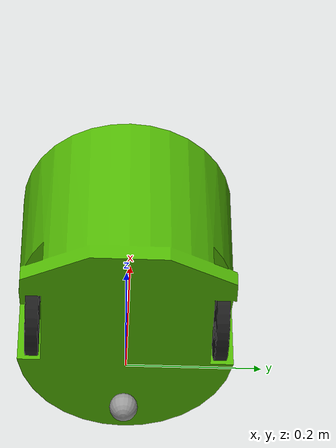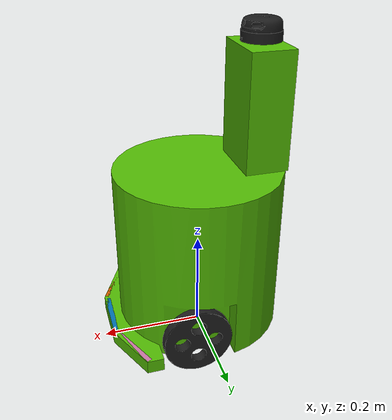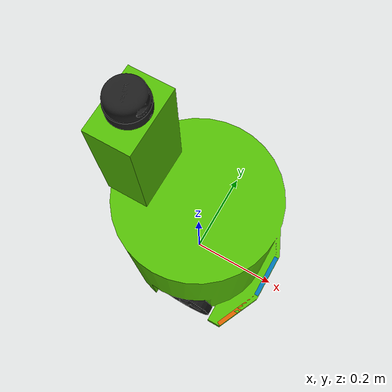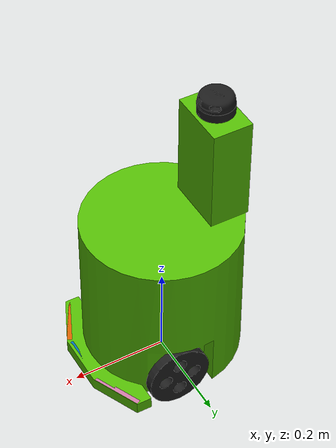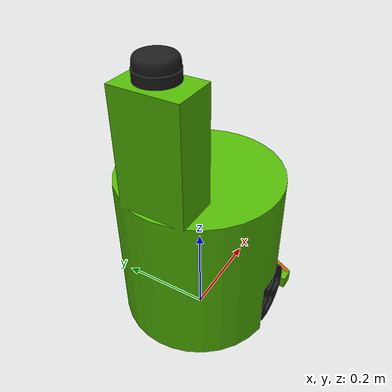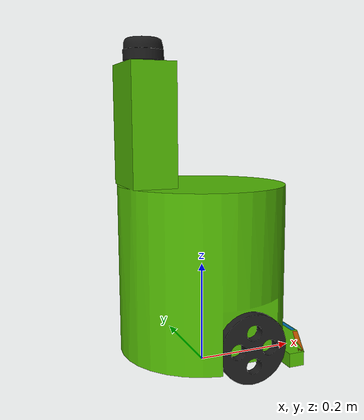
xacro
<?xml version="1.0"?>
<robot name="tango" xmlns:xacro="http://ros.org/wiki/xacro">

  <xacro:arg name="arc" default="true"/>

  <xacro:include filename="$(find tango_description)/urdf/common_properties.urdf.xacro"/>
  <xacro:include filename="$(find tango_description)/urdf/chassis_with_lidar.urdf.xacro"/>
  <xacro:include filename="$(find tango_description)/urdf/chassis_with_kinect.urdf.xacro"/>
  <xacro:include filename="$(find tango_description)/urdf/rplidar_a2.urdf.xacro"/>
  <xacro:include filename="$(find tango_description)/urdf/kinect.urdf.xacro"/>
  <xacro:include filename="$(find tango_description)/urdf/wheel.urdf.xacro"/>
  <xacro:include filename="$(find tango_description)/urdf/caster.urdf.xacro"/>
  <xacro:include filename="$(find tango_description)/urdf/bumper.urdf.xacro"/>
  <xacro:include filename="$(find tango_description)/urdf/imu.urdf.xacro"/>
  <xacro:include filename="$(find tango_description)/urdf/sonar_sensor.urdf.xacro"/>
  <xacro:include filename="$(find tango_description)/urdf/infrared_sensor.urdf.xacro"/>
  <xacro:include filename="$(find tango_description)/urdf/fall_sensor.urdf.xacro"/>

  <xacro:property name="left" value="1"/>
  <xacro:property name="right" value="-1"/>

  <xacro:macro name="create_fixed_link_joint" params="prefix parent joint_xyz joint_rpy">
    <link name="${prefix}_link"/>
    <joint name="${prefix}_joint" type="fixed">
      <parent link="${parent}"/>
      <child link="${prefix}_link"/>
      <origin xyz="${joint_xyz}" rpy="${joint_rpy}"/>
    </joint>
  </xacro:macro>

  <link name="base_footprint"/>

  <xacro:create_fixed_link_joint prefix="bottom_tier" parent="base_footprint" joint_xyz="0 0 ${base_footprint_to_bottom_tier}" joint_rpy="0 0 0"/>
  <xacro:create_fixed_link_joint prefix="first_tier" parent="bottom_tier_link" joint_xyz="0 0 ${bottom_tier_to_first_tier}" joint_rpy="0 0 0"/>
  <xacro:create_fixed_link_joint prefix="second_tier" parent="first_tier_link" joint_xyz="0 0 ${first_tier_to_second_tier}" joint_rpy="0 0 0"/>
  <xacro:create_fixed_link_joint prefix="third_tier" parent="second_tier_link" joint_xyz="0 0 ${second_tier_to_third_tier}" joint_rpy="0 0 0"/>
  <xacro:create_fixed_link_joint prefix="slam_tier" parent="third_tier_link" joint_xyz="-0.115 0 ${third_tier_to_slam_tier}" joint_rpy="0 0 0"/>

  <xacro:if value="$(arg arc)">
    <xacro:chassis_with_lidar prefix="chassis_with_lidar" parent="base_footprint" mass="10.0" link_xyz="0 0 0" link_rpy="0 0 0" joint_xyz="0 0 0" joint_rpy="0 0 0"/>
    <xacro:lidar prefix="lidar" parent="slam_tier_link" link_xyz="0 0 0" link_rpy="0 0 0" joint_xyz="0 0 0.04" joint_rpy="0 0 0"/>
  </xacro:if>
  <xacro:unless value="$(arg arc)">
    <xacro:chassis_with_kinect prefix="chassis_with_kinect" parent="base_footprint" mass="10.0" link_xyz="0 0 0" link_rpy="0 0 0" joint_xyz="0 0 0" joint_rpy="0 0 0"/>
    <xacro:kinect prefix="kinect" parent="slam_tier_link" link_xyz="0 0 0" link_rpy="0 0 0" joint_xyz="0 0 0.04" joint_rpy="0 0 ${pi/2}"/>
    <xacro:create_fixed_link_joint prefix="camera" parent="slam_tier_link" joint_xyz="0 0 0.04" joint_rpy="0 0 0"/>
  </xacro:unless>

  <xacro:wheel prefix="left" parent="base_footprint" link_xyz="0 0 0" link_rpy="${pi/2} 0  0" joint_xyz="${wheel_center_height} ${(wheel_seperation*left)/2} ${wheel_diameter/2}"  joint_rpy="0 0 0" radius="${wheel_diameter/2}" height="${wheel_thickness}" mass="1.5"/>
  <xacro:wheel prefix="right" parent="base_footprint" link_xyz="0 0 0" link_rpy="${pi/2} 0  0"  joint_xyz="${wheel_center_height} ${(wheel_seperation*right)/2} ${wheel_diameter/2}"  joint_rpy="0 0 0" radius="${wheel_diameter/2}" height="${wheel_thickness}" mass="1.5"/>
  <xacro:caster prefix="caster" parent="base_footprint" link_xyz="0 0 0" link_rpy="0 0 0" joint_xyz="-0.111 0 ${caster_diameter/2}" joint_rpy="0 0 0" mass="0.8" radius="${caster_diameter/2}"/>

  <xacro:imu_sensor  prefix="imu" parent="first_tier_link" joint_xyz="0 0 0.015" joint_rpy="0 0 0"/>

  <xacro:bumper prefix="center_bumper" parent="bottom_tier_link" link_xyz="0 0 0" link_rpy="0 0 0" joint_xyz="0.185 0 0"  joint_rpy="0 0 0" mass="0.2" height="0.025" width="0.01" depth="0.105"/>
  <xacro:bumper prefix="right_bumper" parent="bottom_tier_link" link_xyz="0 0 0" link_rpy="0 0 0" joint_xyz="0.162 ${0.107*right} 0"  joint_rpy="0 0 ${((25*pi)/180)*right}" mass="0.2" height="0.025" width="0.01" depth="0.105"/>
  <xacro:bumper prefix="left_bumper" parent="bottom_tier_link" link_xyz="0 0 0" link_rpy="0 0 0" joint_xyz="0.162 ${0.107*left} 0"  joint_rpy="0 0 ${((25*pi)/180)*left}" mass="0.2" height="0.025" width="0.01" depth="0.105"/>

  <xacro:ir_sensor prefix="front_c_ir" parent="bottom_tier_link" joint_xyz="0.17 0 0.042" joint_rpy="0 0 0"/>
  <xacro:ir_sensor prefix="front_r_inner_ir" parent="bottom_tier_link" joint_xyz="0.16 -0.05 0.042" joint_rpy="0 0 ${right*20*(pi/180)}"/>
  <xacro:ir_sensor prefix="front_r_outer_ir" parent="bottom_tier_link" joint_xyz="0.135 -0.095 0.042" joint_rpy="0 0 ${right*40*(pi/180)}"/>
  <xacro:ir_sensor prefix="rear_r_ir" parent="bottom_tier_link" joint_xyz="-0.07 -0.14 0.042" joint_rpy="0 0 ${right*120*(pi/180)}"/>
  <xacro:ir_sensor prefix="rear_l_ir" parent="bottom_tier_link" joint_xyz="-0.07 0.14 0.042" joint_rpy="0 0 ${left*120*(pi/180)}"/>
  <xacro:ir_sensor prefix="front_l_outer_ir" parent="bottom_tier_link" joint_xyz="0.135 0.095 0.042" joint_rpy="0 0 ${left*40*(pi/180)}"/>
  <xacro:ir_sensor prefix="front_l_inner_ir" parent="bottom_tier_link" joint_xyz="0.16 0.05 0.042" joint_rpy="0 0 ${left*20*(pi/180)}"/>

  <xacro:fall_sensor prefix="front_r_fall" parent="bottom_tier_link" joint_xyz="0.126 -0.137 -0.006" joint_rpy="0 0 0"/>
  <xacro:fall_sensor prefix="rear_r_fall" parent="bottom_tier_link" joint_xyz="-0.13 -0.08 -0.006" joint_rpy="0 0 ${right*327*(pi/180)}"/>
  <xacro:fall_sensor prefix="rear_l_fall" parent="bottom_tier_link" joint_xyz="-0.13 0.08 -0.006" joint_rpy="0 0 ${left*327*(pi/180)}"/>
  <xacro:fall_sensor prefix="front_l_fall" parent="bottom_tier_link" joint_xyz="0.126 0.137 -0.006" joint_rpy="0 0 0"/>

  <xacro:sonar_sensor name="front_c_us" parent="first_tier_link" ros_topic="sonar/front_c_us" update_rate="50" min_range="0.04" max_range="5.0" field_of_view="${60*pi/180}" ray_count="3">
    <origin xyz="0.155 0 0.05" rpy="0 0 0"/>
  </xacro:sonar_sensor>
  <xacro:sonar_sensor name="front_r_us" parent="first_tier_link" ros_topic="sonar/front_r_us" update_rate="50" min_range="0.04" max_range="5.0" field_of_view="${60*pi/180}" ray_count="3">
    <origin xyz="0.07 -0.14 0.05" rpy="0 0 ${right*62*(pi/180)}"/>
  </xacro:sonar_sensor>
    <xacro:sonar_sensor name="rear_r_us" parent="first_tier_link" ros_topic="sonar/rear_r_us" update_rate="50" min_range="0.04" max_range="5.0" field_of_view="${60*pi/180}" ray_count="3">
    <origin xyz="-0.075 -0.14 0.05" rpy="0 0 ${right*120*(pi/180)}"/>
  </xacro:sonar_sensor>
    <xacro:sonar_sensor name="rear_c_us" parent="first_tier_link" ros_topic="sonar_height/rear_c_us" update_rate="50" min_range="0.04" max_range="5.0" field_of_view="${60*pi/180}" ray_count="3">
    <origin xyz="-0.155 0 0.05" rpy="0 0 ${pi}"/>
  </xacro:sonar_sensor>
  <xacro:sonar_sensor name="rear_l_us" parent="first_tier_link" ros_topic="sonar/rear_l_us" update_rate="50" min_range="0.04" max_range="5.0" field_of_view="${60*pi/180}" ray_count="3">
    <origin xyz="-0.075 0.14 0.05" rpy="0 0 ${left*120*(pi/180)}"/>
  </xacro:sonar_sensor>
    <xacro:sonar_sensor name="front_l_us" parent="first_tier_link" ros_topic="sonar/front_l_us" update_rate="50" min_range="0.04" max_range="5.0" field_of_view="${60*pi/180}" ray_count="3">
    <origin xyz="0.07 0.14 0.05" rpy="0 0 ${left*62*(pi/180)}"/>
  </xacro:sonar_sensor>

  <gazebo>
    <plugin name="differential_drive_controller" filename="libgazebo_ros_diff_drive.so">
      <alwaysOn>true</alwaysOn>
      <updateRate>20</updateRate>
      <rosDebugLevel>na</rosDebugLevel>
      <leftJoint>left_wheel_joint</leftJoint>
      <rightJoint>right_wheel_joint</rightJoint>
      <wheelSeparation>${wheel_seperation}</wheelSeparation>
      <wheelDiameter>${wheel_diameter}</wheelDiameter>
      <wheelAcceleration>0</wheelAcceleration>
      <wheelTorque>5</wheelTorque>
      <odometrySource>world</odometrySource>
      <torque>20</torque>
      <commandTopic>/tango/cmd_vel</commandTopic>
      <odometryTopic>odom</odometryTopic>
      <odometryFrame>odom</odometryFrame>
      <robotBaseFrame>base_footprint</robotBaseFrame>
      <legacyMode>false</legacyMode>
      <publishWheelTF>true</publishWheelTF>
      <publishTf>1</publishTf>
      <publishWheelJointState>false</publishWheelJointState>
    </plugin>
  </gazebo>

  <gazebo>
    <plugin name="gazebo_ros_control" filename="libgazebo_ros_control.so">
      <robotNamespace>/tango</robotNamespace>
    </plugin>
  </gazebo>

</robot>

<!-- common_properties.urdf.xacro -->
<robot name="common_properties" xmlns:xacro="http://ros.org/wiki/xacro">

  <xacro:property name="wheel_seperation" value="0.28"/>
  <xacro:property name="wheel_diameter" value="0.136"/>
  <xacro:property name="wheel_thickness" value="0.02"/>
  <xacro:property name="wheel_center_height" value="0.0425"/>
  <xacro:property name="caster_diameter" value="0.043"/>

  <xacro:property name="base_footprint_to_bottom_tier" value="0.0395"/>
  <xacro:property name="base_link_to_base_tier" value="0.0395"/>
  <xacro:property name="bottom_tier_to_first_tier" value="0.123"/>
  <xacro:property name="first_tier_to_second_tier" value="0.105"/>
  <xacro:property name="second_tier_to_third_tier" value="0.092"/>
  <xacro:property name="third_tier_to_slam_tier" value="0.192"/>

</robot>

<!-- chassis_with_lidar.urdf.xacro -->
<robot name="chassis_with_lidar" xmlns:xacro="http://ros.org/wiki/xacro">

  <xacro:property name="tango_with_lidar_mesh" value="package://tango_description/meshes/visual_model/tango_lidar.dae"/>
  <xacro:property name="tango_with_lidar_collision_mesh" value="package://tango_description/meshes/collision_model/tango_collision.dae"/>

  <xacro:macro name="tango_with_lidar_inertial" params="mass">
    <inertial>
      <mass value="${mass}" />
      <inertia ixx="0.0002684" ixy="0.0000000" ixz="0.0000376" iyy="0.0002819" iyz="0.0000002" izz="0.0001236" />
    </inertial>
  </xacro:macro>

  <xacro:macro name="chassis_with_lidar" params="prefix parent mass link_xyz link_rpy joint_xyz joint_rpy">
    <link name="${prefix}_link">
      <visual>
        <geometry>
          <mesh filename="${tango_with_lidar_mesh}"/>
        </geometry>
        <origin xyz="${link_xyz}" rpy="${link_rpy}"/>
      </visual>

      <collision>
        <geometry>
          <mesh filename="${tango_with_lidar_collision_mesh}"/>
        </geometry>
        <origin xyz="${link_xyz}" rpy="${link_rpy}"/>
      </collision>
      <xacro:tango_with_lidar_inertial mass="${mass}"/>
    </link>

    <joint name="${prefix}_joint" type="fixed">
      <parent link="${parent}"/>
      <child link="${prefix}_link"/>
      <origin xyz="${joint_xyz}" rpy="${joint_rpy}"/>
    </joint>

    <gazebo reference="${prefix}_link">
      <mu1>0.0</mu1>
      <mu2>0.0</mu2>
      <turnGravityOff>false</turnGravityOff>
    </gazebo>
  </xacro:macro>

</robot>

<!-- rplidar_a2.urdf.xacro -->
<robot name="rplidar_a2" xmlns:xacro="http://ros.org/wiki/xacro">

  <xacro:property name="rplidar_a2_mesh" value="package://tango_description/meshes/visual_model/rplidar_a2.dae"/>
  <xacro:property name="rplidar_a2_collision_mesh" value="package://tango_description/meshes/collision_model/slam_collision.dae"/>
  <xacro:property name="rplidar_a2_mass" value="0.340"/>

  <xacro:macro name="rplidar_a2_inertial" params="mass">
    <inertial>
      <mass value="${mass}" />
      <inertia ixx="0.0004827" ixy="-0.0000041" ixz="0.0000048" iyy="0.0004946" iyz="-0.0000173" izz="0.0007809" />
    </inertial>
  </xacro:macro>

  <xacro:macro name="lidar" params="prefix parent link_xyz link_rpy joint_xyz joint_rpy">
    <link name="${prefix}_link">
      <visual>
        <geometry>
          <mesh filename="${rplidar_a2_mesh}"/>
        </geometry>
        <origin xyz="${link_xyz}" rpy="${link_rpy}"/>
      </visual>

      <collision>
        <geometry>
          <mesh filename="${rplidar_a2_collision_mesh}"/>
        </geometry>
        <origin xyz="${link_xyz}" rpy="${link_rpy}"/>
      </collision>
        <xacro:rplidar_a2_inertial mass="${rplidar_a2_mass}"/>
    </link>

    <joint name="${prefix}_joint" type="fixed">
      <parent link="${parent}"/>
      <child link="${prefix}_link"/>
      <origin xyz="${joint_xyz}" rpy="${joint_rpy}"/>
    </joint>

    <gazebo reference="${prefix}_link">
      <sensor type="ray" name="head_hokuyo_sensor">
        <pose>0 0 0 0 0 0</pose>
        <visualize>false</visualize>
        <update_rate>40</update_rate>
        <ray>
          <scan>
            <horizontal>
              <samples>360</samples>
              <resolution>1</resolution>
              <min_angle>-3.14159</min_angle>
              <max_angle>3.14159</max_angle>
            </horizontal>
          </scan>
          <range>
            <min>0.1</min>
            <max>6.0</max>
            <resolution>0.1</resolution>
          </range>
          <noise>
            <type>gaussian</type>
            <mean>0.0</mean>
            <stddev>0.01</stddev>
          </noise>
        </ray>
        <plugin name="gazebo_ros_head_hokuyo_controller" filename="libgazebo_ros_laser.so">
          <topicName>/laser/scan</topicName>
          <frameName>${prefix}_link</frameName>
	  <frameid>/base_laser</frameid>
        </plugin>
      </sensor>
      <turnGravityOff>false</turnGravityOff>
    </gazebo>

  </xacro:macro>
</robot>

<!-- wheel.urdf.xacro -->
<robot name="wheel" xmlns:xacro="http://ros.org/wiki/xacro">

  <xacro:property name="tango_wheel_mesh" value="package://tango_description/meshes/visual_model/tango_wheel.dae"/>

  <xacro:macro name="wheel_inertial" params="mass">
    <inertial>
      <mass value="${mass}"/>
      <inertia ixx="0.0028656" ixy="-0.0000000" ixz="0.0000000" iyy="0.0028655" iyz="-0.0000000" izz="0.0055831" />
    </inertial>
  </xacro:macro>

  <xacro:macro name="wheel" params="prefix parent link_xyz link_rpy joint_xyz joint_rpy radius height mass">
    <link name="${prefix}_wheel_link">
      <visual>
        <origin xyz="${link_xyz}" rpy="${link_rpy}" />
        <geometry>
	   <mesh filename="${tango_wheel_mesh}"/>
        </geometry>
        <material name="black"/>
      </visual>

      <collision>
        <origin xyz="${link_xyz}" rpy="${link_rpy}" />
        <geometry>
          <cylinder radius="${radius}" length="${height}"/>
        </geometry>
      </collision>
      <xacro:wheel_inertial mass="${mass}"/>
    </link>

    <joint name="${prefix}_wheel_joint" type="continuous">
      <parent link="${parent}"/>
      <child link="${prefix}_wheel_link"/>
      <origin xyz="${joint_xyz}" rpy="${joint_rpy}"/>
      <axis xyz="0 1 0"/>
      <joint_properties damping="0.0" friction="0.0"/>
    </joint>

    <gazebo reference="${prefix}_wheel_link">
      <kp>1000000.0</kp>
      <kd>1.0</kd>
      <mu1>0.8</mu1>
      <mu2>0.8</mu2>
      <maxVel>0.0</maxVel>
      <minDepth>0.001</minDepth>
      <turnGravityOff>false</turnGravityOff>
    </gazebo>

    <transmission name="${prefix}_trans">
      <type>transmission_interface/SimpleTransmission</type>
      <joint name="${prefix}_wheel_joint">
        <hardwareInterface>hardware_interface/EffortJointInterface</hardwareInterface>
      </joint>
      <actuator name="${prefix}_motor">
        <hardwareInterface>hardware_interface/EffortJointInterface</hardwareInterface>
        <mechanicalReduction>10</mechanicalReduction>
      </actuator>
    </transmission>
  </xacro:macro>

</robot>

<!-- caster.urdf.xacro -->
<robot name="caster" xmlns:xacro="http://ros.org/wiki/xacro">

  <xacro:macro name="caster_inertial" params="mass radius">
    <xacro:property name="caster_inertia_xx_yy_zz" value="${0.4*mass*radius*radius}"/>
    <inertial>
      <mass value="${mass}" />
      <inertia ixx="${caster_inertia_xx_yy_zz}" ixy="0.0" ixz="0.0" iyy="${caster_inertia_xx_yy_zz}" iyz="0.0" izz="${caster_inertia_xx_yy_zz}" />
    </inertial>
  </xacro:macro>

  <xacro:macro name="caster" params="prefix parent link_xyz link_rpy joint_xyz joint_rpy mass  radius">
    <link name="${prefix}_link">
      <visual>
        <origin rpy="${link_rpy}" xyz="${link_xyz}"/>
        <geometry>
          <sphere radius="${radius}"/>
        </geometry>
      </visual>

      <collision>
        <geometry>
          <sphere radius="${radius}"/>
        </geometry>
        <origin rpy="${link_rpy}" xyz="${link_xyz}"/>
      </collision>
      <xacro:caster_inertial mass="${mass}" radius="${radius}"/>
    </link>

    <joint name="${prefix}_joint" type="fixed">
      <parent link="${parent}"/>
      <child link="${prefix}_link"/>
      <origin rpy="${joint_rpy}" xyz="${joint_xyz}"/>
    </joint>

    <gazebo reference="${prefix}_link">
      <mu1>0.0</mu1>
      <mu2>0.0</mu2>
      <material>Gazebo/Grey</material>
      <turnGravityOff>false</turnGravityOff>
    </gazebo>
  </xacro:macro>

</robot>

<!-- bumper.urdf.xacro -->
<robot name="bumper" xmlns:xacro="http://ros.org/wiki/xacro">

  <xacro:macro name="bumper_inertial" params="mass height width depth">
    <xacro:property name="bumper_inertia_xx" value="${(0.8333*mass)*((height*height)+(depth*depth))}"/>
    <xacro:property name="bumper_inertia_yy" value="${(0.8333*mass)*((width*width)+(depth*depth))}"/>
    <xacro:property name="bumper_inertia_zz" value="${(0.8333*mass)*((width*width)+(height*depth))}"/>
    <inertial>
      <mass value="${mass}" />
      <inertia ixx="${bumper_inertia_xx}" ixy="0.0" ixz="0.0" iyy="${bumper_inertia_yy}" iyz="0.0" izz="${bumper_inertia_zz}" />
    </inertial>
  </xacro:macro>

  <xacro:macro name="bumper" params="prefix parent link_xyz link_rpy joint_xyz joint_rpy mass height width depth">
    <link name="${prefix}_link">
      <visual>
        <origin rpy="${link_rpy}" xyz="${link_xyz}"/>
        <geometry>
	  <box size="${width} ${depth} ${height}"/>
        </geometry>
      </visual>

      <collision>
        <geometry>
	  <box size="${width} ${depth} ${height}"/>
        </geometry>
        <origin rpy="${link_rpy}" xyz="${link_xyz}"/>
      </collision>
      <xacro:bumper_inertial mass="${mass}" height="${height}" width="${width}" depth="${depth}"/>
    </link>

    <joint name="${prefix}_joint" type="fixed">
      <parent link="${parent}"/>
      <child link="${prefix}_link"/>
      <origin rpy="${joint_rpy}" xyz="${joint_xyz}"/>
    </joint>

  </xacro:macro>

</robot>

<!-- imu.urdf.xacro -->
<robot name="imu" xmlns:xacro="http://ros.org/wiki/xacro">

  <xacro:macro name="imu_inertial" params="mass height width depth">
    <xacro:property name="imu_inertia_xx" value="${(0.8333*mass)*((height*height)+(depth*depth))}"/>
    <xacro:property name="imu_inertia_yy" value="${(0.8333*mass)*((width*width)+(depth*depth))}"/>
    <xacro:property name="imu_inertia_zz" value="${(0.8333*mass)*((width*width)+(height*height))}"/>
    <inertial>
      <mass value="${mass}" />
      <inertia ixx="${imu_inertia_xx}" ixy="0.0" ixz="0.0" iyy="${imu_inertia_yy}" iyz="0.0" izz="${imu_inertia_zz}" />
    </inertial>
  </xacro:macro>

  <xacro:macro name="imu_sensor" params="prefix parent joint_xyz joint_rpy">
    <link name="${prefix}_link">
      <visual>
        <origin xyz="0 0 0" rpy="0 0 0"/>
        <geometry>
          <box size="0.03 0.02 0.01"/>
        </geometry>
        <material name="iRobot/Red"/>
      </visual>

      <collision>
        <origin xyz="0 0 0" rpy="0 0 0"/>
	<geometry>
	  <box size="0.03 0.02 0.01"/>
	</geometry>
      </collision>
      <xacro:imu_inertial mass="0.01" height="0.1" width="0.03" depth="0.02"/>
    </link>

    <joint name="${prefix}_joint" type="fixed">
      <origin xyz="${joint_xyz}" rpy="${joint_rpy}"/>
      <parent link="${parent}"/>
      <child link="${prefix}_link"/>
    </joint>

    <gazebo >
      <plugin name="imu" filename="libhector_gazebo_ros_imu.so">
        <serviceName>/imu/calibrate</serviceName>
        <updateRate>200.0</updateRate>
        <bodyName>imu_link</bodyName>
        <frameId>imu_link</frameId>
        <topicName>imu</topicName>
        <rpyOffset>0 0 0</rpyOffset>
        <xyzOffset>0 0 0</xyzOffset>
        <gaussianNoise>0.00000001</gaussianNoise>
        <accelDrift>0.00000001 0.00000001 0.00000001</accelDrift>
        <accelDriftFrequency>0.00000001 0.00000001 0.00000001</accelDriftFrequency>
        <accelGaussianNoise>0.00000001 0.00000001 0.00000001</accelGaussianNoise>
        <rateDrift>0.0 0.0 0.0</rateDrift>
        <rateDriftFrequency>0.0 0.0 0.0</rateDriftFrequency>
        <rateGaussianNoise>0.0 0.0 0.0</rateGaussianNoise>
        <headingDrift>0.0 0.0 0.0</headingDrift>
        <headingDriftFrequency>0.0 0.0 0.0</headingDriftFrequency>
        <headingGaussianNoise>0.0 0.0 0.0</headingGaussianNoise>
      </plugin>
    </gazebo>
  </xacro:macro>

</robot>

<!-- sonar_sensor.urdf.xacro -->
<robot xmlns:xacro="http://ros.org/wiki/xacro">
  <xacro:macro name="sonar_sensor" params="name parent *origin ros_topic update_rate min_range max_range field_of_view ray_count">
    <joint name="${name}_joint" type="fixed">
      <xacro:insert_block name="origin" />
      <parent link="${parent}"/>
      <child link="${name}_link"/>
    </joint>

    <link name="${name}_link">
      <inertial>
        <mass value="0.001" />
        <origin xyz="0 0 0" rpy="0 0 0" />
        <inertia ixx="0.000000017" ixy="0" ixz="0" iyy="0.000000017" iyz="0" izz="0.000000017" />
      </inertial>
      <visual>
        <origin xyz="0 0 0" rpy="0 0 0" />
        <geometry>
          <box size="0.001 0.001 0.001" />
	</geometry>
      </visual>
      <collision>
        <origin xyz="0 0 0" rpy="0 0 0" />
        <geometry>
          <box size="0.01 0.01 0.01" />
        </geometry>
      </collision>
    </link>

    <gazebo reference="${name}_link">
      <sensor type="ray" name="${name}">
        <always_on>true</always_on>
        <update_rate>${update_rate}</update_rate>
        <pose>0 0 0 0 0 0</pose>
        <visualize>false</visualize>
        <ray>
          <scan>
            <horizontal>
              <samples>${ray_count}</samples>
              <resolution>0.1</resolution>
              <min_angle>-${field_of_view/2}</min_angle>
              <max_angle> ${field_of_view/2}</max_angle>
            </horizontal>
            <vertical>
              <samples>${ray_count}</samples>
              <resolution>0.1</resolution>
              <min_angle>-${field_of_view/2}</min_angle>
              <max_angle> ${field_of_view/2}</max_angle>
            </vertical>
          </scan>
          <range>
            <min>${min_range}</min>
            <max>${max_range}</max>
            <resolution>0.01</resolution>
          </range>
        </ray>

        <plugin name="gazebo_ros_${name}_controller" filename="libhector_gazebo_ros_sonar.so">
          <gaussianNoise>0.001</gaussianNoise>
          <topicName>${ros_topic}</topicName>
          <frameId>${name}_link</frameId>
        </plugin>
      </sensor>
    </gazebo>
  </xacro:macro>
</robot>

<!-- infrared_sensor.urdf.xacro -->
<robot name="infrared_sensor" xmlns:xacro="http://ros.org/wiki/xacro">

  <xacro:macro name="ir_sensor_inertial" params="mass height width depth">
    <xacro:property name="ir_sensor_inertia_xx" value="${(0.8333*mass)*((height*height)+(depth*depth))}"/>
    <xacro:property name="ir_sensor_inertia_yy" value="${(0.8333*mass)*((width*width)+(depth*depth))}"/>
    <xacro:property name="ir_sensor_inertia_zz" value="${(0.8333*mass)*((width*width)+(height*height))}"/>
    <inertial>
      <mass value="${mass}" />
      <inertia ixx="${ir_sensor_inertia_xx}" ixy="0.0" ixz="0.0" iyy="${ir_sensor_inertia_yy}" iyz="0.0" izz="${ir_sensor_inertia_zz}" />
    </inertial>
  </xacro:macro>

  <xacro:macro name="ir_sensor" params="prefix parent joint_xyz joint_rpy">
    <link name="${prefix}_link">
      <xacro:ir_sensor_inertial mass="0.01" height="0.001" width="0.001" depth="0.001"/>
    </link>

    <joint name="${prefix}_joint" type="fixed">
      <origin xyz="${joint_xyz}" rpy="${joint_rpy}"/>
      <parent link="${parent}"/>
      <child link="${prefix}_link"/>
    </joint>
  </xacro:macro>

</robot>

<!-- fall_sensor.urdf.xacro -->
<robot name="fall_sensor" xmlns:xacro="http://ros.org/wiki/xacro">

  <xacro:macro name="fall_sensor_inertial" params="mass height width depth">
    <xacro:property name="fall_sensor_inertia_xx" value="${(0.8333*mass)*((height*height)+(depth*depth))}"/>
    <xacro:property name="fall_sensor_inertia_yy" value="${(0.8333*mass)*((width*width)+(depth*depth))}"/>
    <xacro:property name="fall_sensor_inertia_zz" value="${(0.8333*mass)*((width*width)+(height*height))}"/>
    <inertial>
      <mass value="${mass}" />
      <inertia ixx="${fall_sensor_inertia_xx}" ixy="0.0" ixz="0.0" iyy="${fall_sensor_inertia_yy}" iyz="0.0" izz="${fall_sensor_inertia_zz}" />
    </inertial>
  </xacro:macro>

  <xacro:macro name="fall_sensor" params="prefix parent joint_xyz joint_rpy">
    <link name="${prefix}_link">
      <xacro:fall_sensor_inertial mass="0.01" height="0.001" width="0.001" depth="0.001"/>
    </link>

    <joint name="${prefix}_joint" type="fixed">
      <origin xyz="${joint_xyz}" rpy="${joint_rpy}"/>
      <parent link="${parent}"/>
      <child link="${prefix}_link"/>
    </joint>
  </xacro:macro>

</robot>
